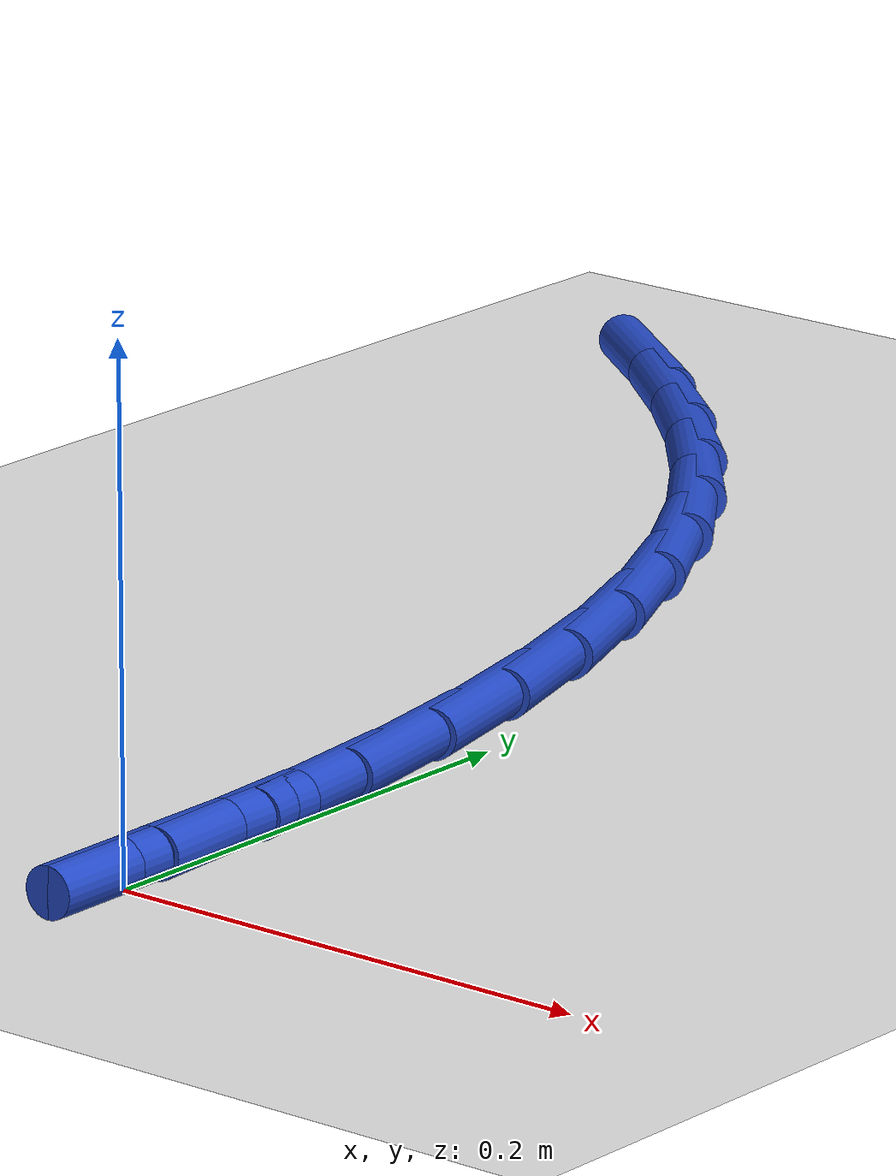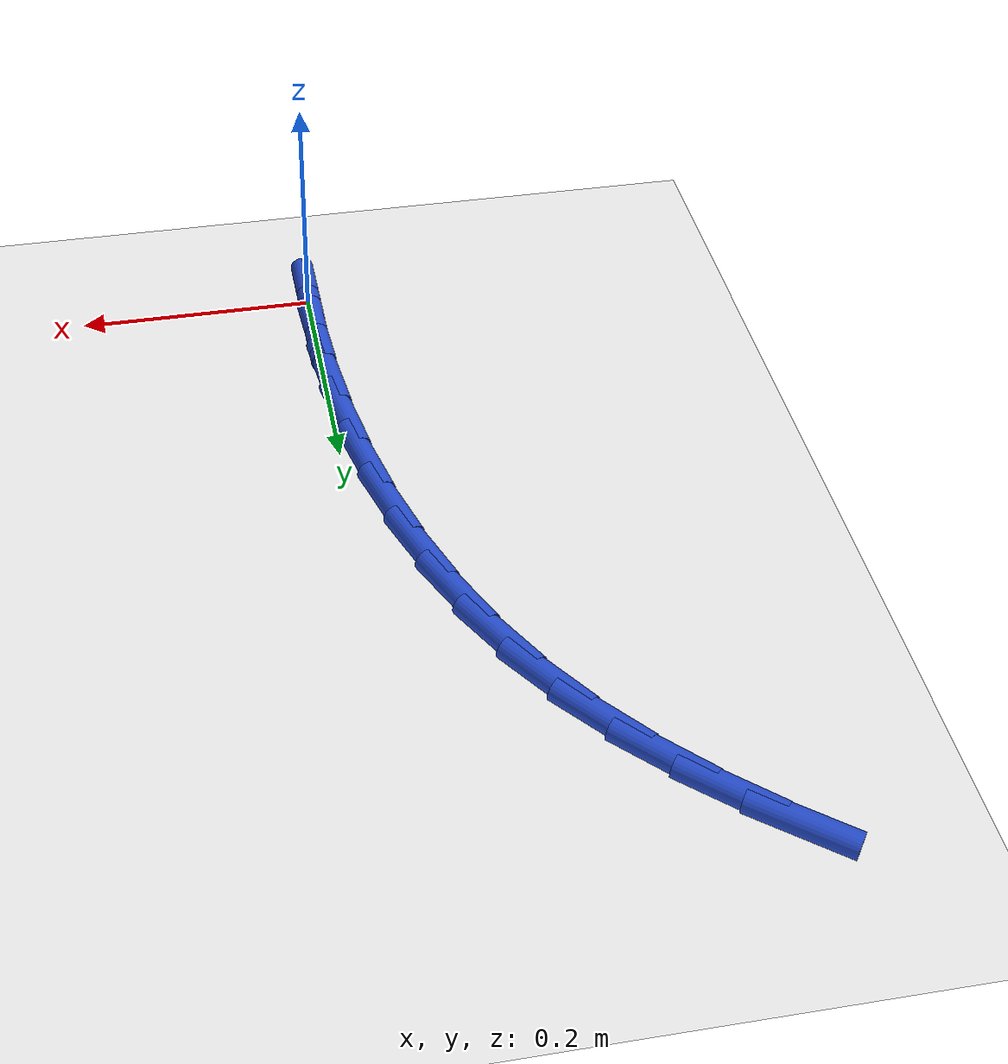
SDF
<sdf version="1.6">
 <world name="default">
  <model name="ground_plane">
   <static>1</static>
   <link name="link">
    <collision name="collision">
     <geometry><plane><normal>0 0 1</normal><size>100 100</size></plane></geometry>
     <surface><friction><ode><mu>100</mu><mu2>50</mu2></ode></friction></surface>
    </collision>
    <visual name="visual">
     <cast_shadows>0</cast_shadows>
     <geometry><plane><normal>0 0 1</normal><size>100 100</size></plane></geometry>
     <material>
      <script><uri>file://media/materials/scripts/gazebo.material</uri><name>Gazebo/WhiteGlow</name></script>
     </material>
    </visual>
   </link>
  </model>
  <model name="line">
   <link name="link_0">
    <pose>3.642919299551295e-17 -2.7755575615628914e-17 0.01 0 1.57 -1.5629450520089978</pose>
    <collision name="collision">
     <geometry><cylinder><radius>0.01</radius><length>0.08</length></cylinder></geometry>
    </collision>
    <visual name="visual">
     <material>
      <script><name>Gazebo/Blue</name><uri>file://media/materials/scripts/gazebo.material</uri></script>
     </material>
     <geometry><cylinder><radius>0.01</radius><length>0.08</length></cylinder></geometry>
    </visual>
   </link>
   <link name="link_1">
    <pose>-0.00043277717610717677 0.05512076642084175 0.01 0 1.57 -1.5149971548045882</pose>
    <collision name="collision">
     <geometry><cylinder><radius>0.01</radius><length>0.08</length></cylinder></geometry>
    </collision>
    <visual name="visual">
     <material>
      <script><name>Gazebo/Blue</name><uri>file://media/materials/scripts/gazebo.material</uri></script>
     </material>
     <geometry><cylinder><radius>0.01</radius><length>0.08</length></cylinder></geometry>
    </visual>
   </link>
   <link name="link_2">
    <pose>-0.0035065895092356346 0.11015064244875336 0.01 0 1.57 -1.463676245815188</pose>
    <collision name="collision">
     <geometry><cylinder><radius>0.01</radius><length>0.08</length></cylinder></geometry>
    </collision>
    <visual name="visual">
     <material>
      <script><name>Gazebo/Blue</name><uri>file://media/materials/scripts/gazebo.material</uri></script>
     </material>
     <geometry><cylinder><radius>0.01</radius><length>0.08</length></cylinder></geometry>
    </visual>
   </link>
   <link name="link_3">
    <pose>-0.009372818259943879 0.1647041281509973 0.01 0 1.57 -1.4081598445966625</pose>
    <collision name="collision">
     <geometry><cylinder><radius>0.01</radius><length>0.08</length></cylinder></geometry>
    </collision>
    <visual name="visual">
     <material>
      <script><name>Gazebo/Blue</name><uri>file://media/materials/scripts/gazebo.material</uri></script>
     </material>
     <geometry><cylinder><radius>0.01</radius><length>0.08</length></cylinder></geometry>
    </visual>
   </link>
   <link name="link_4">
    <pose>-0.01818284468879043 0.2183957235948359 0.01 0 1.57 -1.3475723495224152</pose>
    <collision name="collision">
     <geometry><cylinder><radius>0.01</radius><length>0.08</length></cylinder></geometry>
    </collision>
    <visual name="visual">
     <material>
      <script><name>Gazebo/Blue</name><uri>file://media/materials/scripts/gazebo.material</uri></script>
     </material>
     <geometry><cylinder><radius>0.01</radius><length>0.08</length></cylinder></geometry>
    </visual>
   </link>
   <link name="link_5">
    <pose>-0.03008805005633385 0.2708399288475316 0.01 0 1.57 -1.280994772757419</pose>
    <collision name="collision">
     <geometry><cylinder><radius>0.01</radius><length>0.08</length></cylinder></geometry>
    </collision>
    <visual name="visual">
     <material>
      <script><name>Gazebo/Blue</name><uri>file://media/materials/scripts/gazebo.material</uri></script>
     </material>
     <geometry><cylinder><radius>0.01</radius><length>0.08</length></cylinder></geometry>
    </visual>
   </link>
   <link name="link_6">
    <pose>-0.04523981562313262 0.3216512439763467 0.01 0 1.57 -1.2074989725358847</pose>
    <collision name="collision">
     <geometry><cylinder><radius>0.01</radius><length>0.08</length></cylinder></geometry>
    </collision>
    <visual name="visual">
     <material>
      <script><name>Gazebo/Blue</name><uri>file://media/materials/scripts/gazebo.material</uri></script>
     </material>
     <geometry><cylinder><radius>0.01</radius><length>0.08</length></cylinder></geometry>
    </visual>
   </link>
   <link name="link_7">
    <pose>-0.0637895226497453 0.37044416904854366 0.01 0 1.57 -1.1262187499376768</pose>
    <collision name="collision">
     <geometry><cylinder><radius>0.01</radius><length>0.08</length></cylinder></geometry>
    </collision>
    <visual name="visual">
     <material>
      <script><name>Gazebo/Blue</name><uri>file://media/materials/scripts/gazebo.material</uri></script>
     </material>
     <geometry><cylinder><radius>0.01</radius><length>0.08</length></cylinder></geometry>
    </visual>
   </link>
   <link name="link_8">
    <pose>-0.08588855239673043 0.4168332041313847 0.01 0 1.57 -1.036471140118268</pose>
    <collision name="collision">
     <geometry><cylinder><radius>0.01</radius><length>0.08</length></cylinder></geometry>
    </collision>
    <visual name="visual">
     <material>
      <script><name>Gazebo/Blue</name><uri>file://media/materials/scripts/gazebo.material</uri></script>
     </material>
     <geometry><cylinder><radius>0.01</radius><length>0.08</length></cylinder></geometry>
    </visual>
   </link>
   <link name="link_9">
    <pose>-0.11168828612464655 0.4604328492921326 0.01 0 1.57 -0.9400346719959587</pose>
    <collision name="collision">
     <geometry><cylinder><radius>0.01</radius><length>0.08</length></cylinder></geometry>
    </collision>
    <visual name="visual">
     <material>
      <script><name>Gazebo/Blue</name><uri>file://media/materials/scripts/gazebo.material</uri></script>
     </material>
     <geometry><cylinder><radius>0.01</radius><length>0.08</length></cylinder></geometry>
    </visual>
   </link>
   <link name="link_10">
    <pose>-0.14127556413227108 0.5009477197983863 0.01 0 1.57 -0.8491493416570497</pose>
    <collision name="collision">
     <geometry><cylinder><radius>0.01</radius><length>0.08</length></cylinder></geometry>
    </collision>
    <visual name="visual">
     <material>
      <script><name>Gazebo/Blue</name><uri>file://media/materials/scripts/gazebo.material</uri></script>
     </material>
     <geometry><cylinder><radius>0.01</radius><length>0.08</length></cylinder></geometry>
    </visual>
   </link>
   <link name="link_11">
    <pose>-0.1743856125486064 0.538573371561891 0.01 0 1.57 -0.7692737552073367</pose>
    <collision name="collision">
     <geometry><cylinder><radius>0.01</radius><length>0.08</length></cylinder></geometry>
    </collision>
    <visual name="visual">
     <material>
      <script><name>Gazebo/Blue</name><uri>file://media/materials/scripts/gazebo.material</uri></script>
     </material>
     <geometry><cylinder><radius>0.01</radius><length>0.08</length></cylinder></geometry>
    </visual>
   </link>
   <link name="link_12">
    <pose>-0.210634502838476 0.5736717299772327 0.01 0 1.57 -0.701209927687192</pose>
    <collision name="collision">
     <geometry><cylinder><radius>0.01</radius><length>0.08</length></cylinder></geometry>
    </collision>
    <visual name="visual">
     <material>
      <script><name>Gazebo/Blue</name><uri>file://media/materials/scripts/gazebo.material</uri></script>
     </material>
     <geometry><cylinder><radius>0.01</radius><length>0.08</length></cylinder></geometry>
    </visual>
   </link>
   <link name="link_13">
    <pose>-0.2496382107591026 0.606604854070561 0.01 0 1.57 -0.6450318525188721</pose>
    <collision name="collision">
     <geometry><cylinder><radius>0.01</radius><length>0.08</length></cylinder></geometry>
    </collision>
    <visual name="visual">
     <material>
      <script><name>Gazebo/Blue</name><uri>file://media/materials/scripts/gazebo.material</uri></script>
     </material>
     <geometry><cylinder><radius>0.01</radius><length>0.08</length></cylinder></geometry>
    </visual>
   </link>
   <link name="link_130">
    <pose>2.6020852139652106e-17 -2.3592239273284576e-16 0.01 0 1.57 -1.563498086270124</pose>
    <collision name="collision">
     <geometry><cylinder><radius>0.01</radius><length>0.08</length></cylinder></geometry>
    </collision>
    <visual name="visual">
     <material>
      <script><name>Gazebo/Blue</name><uri>file://media/materials/scripts/gazebo.material</uri></script>
     </material>
     <geometry><cylinder><radius>0.01</radius><length>0.08</length></cylinder></geometry>
    </visual>
   </link>
   <link name="link_131">
    <pose>-0.0004025279749200021 0.055153132694943235 0.01 0 1.57 -1.5634980862701238</pose>
    <collision name="collision">
     <geometry><cylinder><radius>0.01</radius><length>0.08</length></cylinder></geometry>
    </collision>
    <visual name="visual">
     <material>
      <script><name>Gazebo/Blue</name><uri>file://media/materials/scripts/gazebo.material</uri></script>
     </material>
     <geometry><cylinder><radius>0.01</radius><length>0.08</length></cylinder></geometry>
    </visual>
   </link>
  </model>
 </world>
</sdf>
